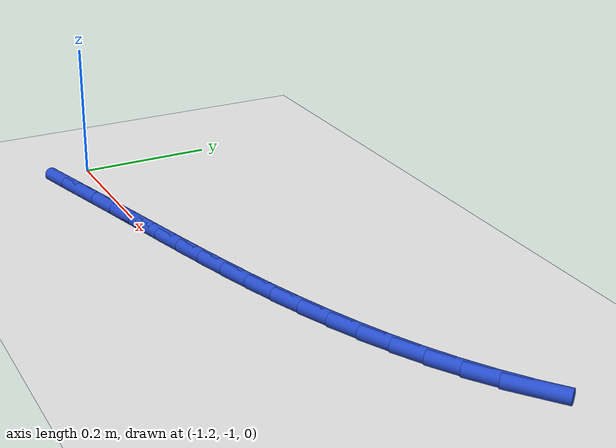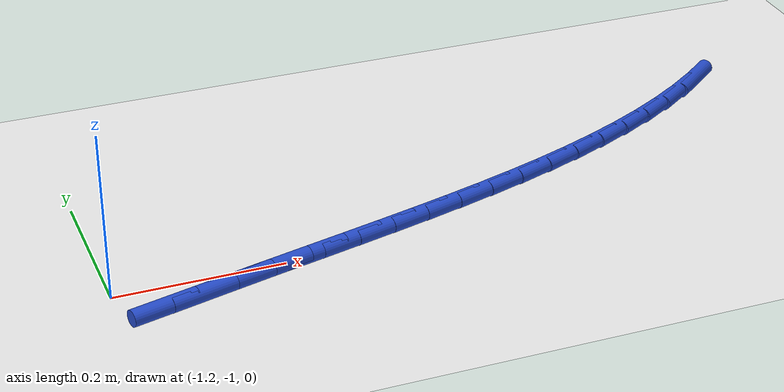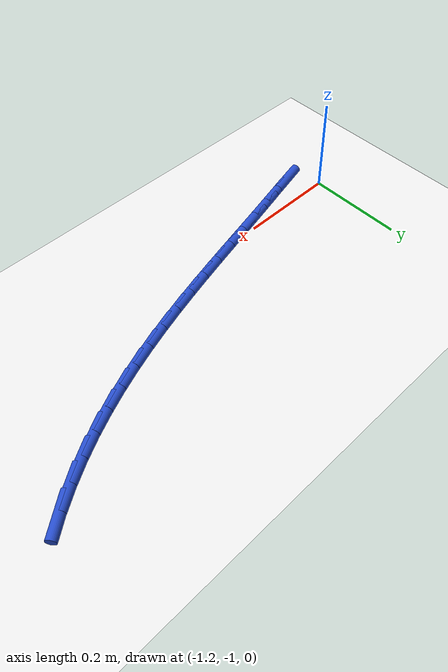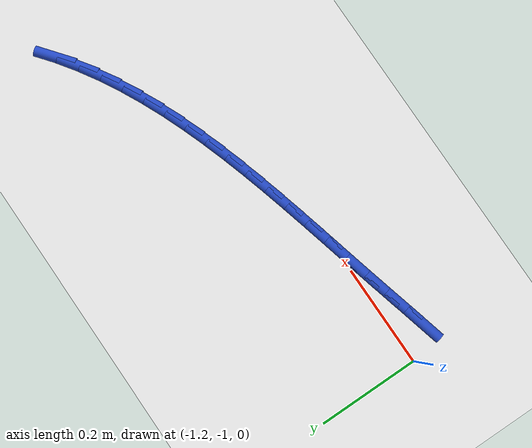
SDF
<sdf version="1.6">
 <world name="default">
  <model name="ground_plane">
   <static>1</static>
   <link name="link">
    <collision name="collision">
     <geometry><plane><normal>0 0 1</normal><size>100 100</size></plane></geometry>
     <surface><friction><ode><mu>100</mu><mu2>50</mu2></ode></friction></surface>
    </collision>
    <visual name="visual">
     <cast_shadows>0</cast_shadows>
     <geometry><plane><normal>0 0 1</normal><size>100 100</size></plane></geometry>
     <material>
      <script><uri>file://media/materials/scripts/gazebo.material</uri><name>Gazebo/WhiteGlow</name></script>
     </material>
    </visual>
   </link>
  </model>
  <model name="line">
   <link name="link_113">
    <pose>-1.152865897082536 -1.0520833427332235 0.01 0 1.57 0.2513608915477667</pose>
    <collision name="collision">
     <geometry><cylinder><radius>0.01</radius><length>0.08</length></cylinder></geometry>
    </collision>
    <visual name="visual">
     <material>
      <script><name>Gazebo/Blue</name><uri>file://media/materials/scripts/gazebo.material</uri></script>
     </material>
     <geometry><cylinder><radius>0.01</radius><length>0.08</length></cylinder></geometry>
    </visual>
   </link>
   <link name="link_114">
    <pose>-1.1066510353771857 -1.0402157337933395 0.01 0 1.57 0.25672675413134644</pose>
    <collision name="collision">
     <geometry><cylinder><radius>0.01</radius><length>0.08</length></cylinder></geometry>
    </collision>
    <visual name="visual">
     <material>
      <script><name>Gazebo/Blue</name><uri>file://media/materials/scripts/gazebo.material</uri></script>
     </material>
     <geometry><cylinder><radius>0.01</radius><length>0.08</length></cylinder></geometry>
    </visual>
   </link>
   <link name="link_115">
    <pose>-1.0602546641584478 -1.0280357726507106 0.01 0 1.57 0.25227624753562855</pose>
    <collision name="collision">
     <geometry><cylinder><radius>0.01</radius><length>0.08</length></cylinder></geometry>
    </collision>
    <visual name="visual">
     <material>
      <script><name>Gazebo/Blue</name><uri>file://media/materials/scripts/gazebo.material</uri></script>
     </material>
     <geometry><cylinder><radius>0.01</radius><length>0.08</length></cylinder></geometry>
    </visual>
   </link>
   <link name="link_116">
    <pose>-1.0137260176767446 -1.0160421768196226 0.01 0 1.57 0.2478785616145487</pose>
    <collision name="collision">
     <geometry><cylinder><radius>0.01</radius><length>0.08</length></cylinder></geometry>
    </collision>
    <visual name="visual">
     <material>
      <script><name>Gazebo/Blue</name><uri>file://media/materials/scripts/gazebo.material</uri></script>
     </material>
     <geometry><cylinder><radius>0.01</radius><length>0.08</length></cylinder></geometry>
    </visual>
   </link>
   <link name="link_117">
    <pose>-0.9671501134418032 -1.004254589262238 0.01 0 1.57 0.2472373806715741</pose>
    <collision name="collision">
     <geometry><cylinder><radius>0.01</radius><length>0.08</length></cylinder></geometry>
    </collision>
    <visual name="visual">
     <material>
      <script><name>Gazebo/Blue</name><uri>file://media/materials/scripts/gazebo.material</uri></script>
     </material>
     <geometry><cylinder><radius>0.01</radius><length>0.08</length></cylinder></geometry>
    </visual>
   </link>
   <link name="link_118">
    <pose>-0.9206254836882999 -0.9925117146771778 0.01 0 1.57 0.2503716933785298</pose>
    <collision name="collision">
     <geometry><cylinder><radius>0.01</radius><length>0.08</length></cylinder></geometry>
    </collision>
    <visual name="visual">
     <material>
      <script><name>Gazebo/Blue</name><uri>file://media/materials/scripts/gazebo.material</uri></script>
     </material>
     <geometry><cylinder><radius>0.01</radius><length>0.08</length></cylinder></geometry>
    </visual>
   </link>
   <link name="link_119">
    <pose>-0.8742506857398408 -0.9806519218667009 0.01 0 1.57 0.25731993556158783</pose>
    <collision name="collision">
     <geometry><cylinder><radius>0.01</radius><length>0.08</length></cylinder></geometry>
    </collision>
    <visual name="visual">
     <material>
      <script><name>Gazebo/Blue</name><uri>file://media/materials/scripts/gazebo.material</uri></script>
     </material>
     <geometry><cylinder><radius>0.01</radius><length>0.08</length></cylinder></geometry>
    </visual>
   </link>
   <link name="link_120">
    <pose>-0.8281242769200285 -0.968513579633066 0.01 0 1.57 0.26814627561094967</pose>
    <collision name="collision">
     <geometry><cylinder><radius>0.01</radius><length>0.08</length></cylinder></geometry>
    </collision>
    <visual name="visual">
     <material>
      <script><name>Gazebo/Blue</name><uri>file://media/materials/scripts/gazebo.material</uri></script>
     </material>
     <geometry><cylinder><radius>0.01</radius><length>0.08</length></cylinder></geometry>
    </visual>
   </link>
   <link name="link_121">
    <pose>-0.7823448145524692 -0.9559350567785324 0.01 0 1.57 0.282938651175179</pose>
    <collision name="collision">
     <geometry><cylinder><radius>0.01</radius><length>0.08</length></cylinder></geometry>
    </collision>
    <visual name="visual">
     <material>
      <script><name>Gazebo/Blue</name><uri>file://media/materials/scripts/gazebo.material</uri></script>
     </material>
     <geometry><cylinder><radius>0.01</radius><length>0.08</length></cylinder></geometry>
    </visual>
   </link>
   <link name="link_122">
    <pose>-0.7370108559607673 -0.9427547221053597 0.01 0 1.57 0.30180515034576594</pose>
    <collision name="collision">
     <geometry><cylinder><radius>0.01</radius><length>0.08</length></cylinder></geometry>
    </collision>
    <visual name="visual">
     <material>
      <script><name>Gazebo/Blue</name><uri>file://media/materials/scripts/gazebo.material</uri></script>
     </material>
     <geometry><cylinder><radius>0.01</radius><length>0.08</length></cylinder></geometry>
    </visual>
   </link>
   <link name="link_123">
    <pose>-0.6922209584685264 -0.9288109444158061 0.01 0 1.57 0.3248682857474791</pose>
    <collision name="collision">
     <geometry><cylinder><radius>0.01</radius><length>0.08</length></cylinder></geometry>
    </collision>
    <visual name="visual">
     <material>
      <script><name>Gazebo/Blue</name><uri>file://media/materials/scripts/gazebo.material</uri></script>
     </material>
     <geometry><cylinder><radius>0.01</radius><length>0.08</length></cylinder></geometry>
    </visual>
   </link>
   <link name="link_124">
    <pose>-0.648073679399352 -0.9139420925121311 0.01 0 1.57 0.35225658756042866</pose>
    <collision name="collision">
     <geometry><cylinder><radius>0.01</radius><length>0.08</length></cylinder></geometry>
    </collision>
    <visual name="visual">
     <material>
      <script><name>Gazebo/Blue</name><uri>file://media/materials/scripts/gazebo.material</uri></script>
     </material>
     <geometry><cylinder><radius>0.01</radius><length>0.08</length></cylinder></geometry>
    </visual>
   </link>
   <link name="link_125">
    <pose>-0.6046675760768492 -0.8979865351965941 0.01 0 1.57 0.3840928785424468</pose>
    <collision name="collision">
     <geometry><cylinder><radius>0.01</radius><length>0.08</length></cylinder></geometry>
    </collision>
    <visual name="visual">
     <material>
      <script><name>Gazebo/Blue</name><uri>file://media/materials/scripts/gazebo.material</uri></script>
     </material>
     <geometry><cylinder><radius>0.01</radius><length>0.08</length></cylinder></geometry>
    </visual>
   </link>
   <link name="link_126">
    <pose>-0.5621012058246211 -0.8807826412714537 0.01 0 1.57 0.42047865163645054</pose>
    <collision name="collision">
     <geometry><cylinder><radius>0.01</radius><length>0.08</length></cylinder></geometry>
    </collision>
    <visual name="visual">
     <material>
      <script><name>Gazebo/Blue</name><uri>file://media/materials/scripts/gazebo.material</uri></script>
     </material>
     <geometry><cylinder><radius>0.01</radius><length>0.08</length></cylinder></geometry>
    </visual>
   </link>
   <link name="link_127">
    <pose>-0.520473125966274 -0.8621687795389693 0.01 0 1.57 0.4614742359264439</pose>
    <collision name="collision">
     <geometry><cylinder><radius>0.01</radius><length>0.08</length></cylinder></geometry>
    </collision>
    <visual name="visual">
     <material>
      <script><name>Gazebo/Blue</name><uri>file://media/materials/scripts/gazebo.material</uri></script>
     </material>
     <geometry><cylinder><radius>0.01</radius><length>0.08</length></cylinder></geometry>
    </visual>
   </link>
   <link name="link_128">
    <pose>-0.47988189382541085 -0.8419833188013996 0.01 0 1.57 0.5070750115331589</pose>
    <collision name="collision">
     <geometry><cylinder><radius>0.01</radius><length>0.08</length></cylinder></geometry>
    </collision>
    <visual name="visual">
     <material>
      <script><name>Gazebo/Blue</name><uri>file://media/materials/scripts/gazebo.material</uri></script>
     </material>
     <geometry><cylinder><radius>0.01</radius><length>0.08</length></cylinder></geometry>
    </visual>
   </link>
   <link name="link_129">
    <pose>-0.44042606672563717 -0.8200646278610041 0.01 0 1.57 0.5571848987233521</pose>
    <collision name="collision">
     <geometry><cylinder><radius>0.01</radius><length>0.08</length></cylinder></geometry>
    </collision>
    <visual name="visual">
     <material>
      <script><name>Gazebo/Blue</name><uri>file://media/materials/scripts/gazebo.material</uri></script>
     </material>
     <geometry><cylinder><radius>0.01</radius><length>0.08</length></cylinder></geometry>
    </visual>
   </link>
   <link name="link_130">
    <pose>-0.40220420199055795 -0.7962510755200419 0.01 0 1.57 0.6115896879703405</pose>
    <collision name="collision">
     <geometry><cylinder><radius>0.01</radius><length>0.08</length></cylinder></geometry>
    </collision>
    <visual name="visual">
     <material>
      <script><name>Gazebo/Blue</name><uri>file://media/materials/scripts/gazebo.material</uri></script>
     </material>
     <geometry><cylinder><radius>0.01</radius><length>0.08</length></cylinder></geometry>
    </visual>
   </link>
   <link name="link_131">
    <pose>-0.36531485694377674 -0.7703810305807716 0.01 0 1.57 0.6699342634990476</pose>
    <collision name="collision">
     <geometry><cylinder><radius>0.01</radius><length>0.08</length></cylinder></geometry>
    </collision>
    <visual name="visual">
     <material>
      <script><name>Gazebo/Blue</name><uri>file://media/materials/scripts/gazebo.material</uri></script>
     </material>
     <geometry><cylinder><radius>0.01</radius><length>0.08</length></cylinder></geometry>
    </visual>
   </link>
  </model>
 </world>
</sdf>
